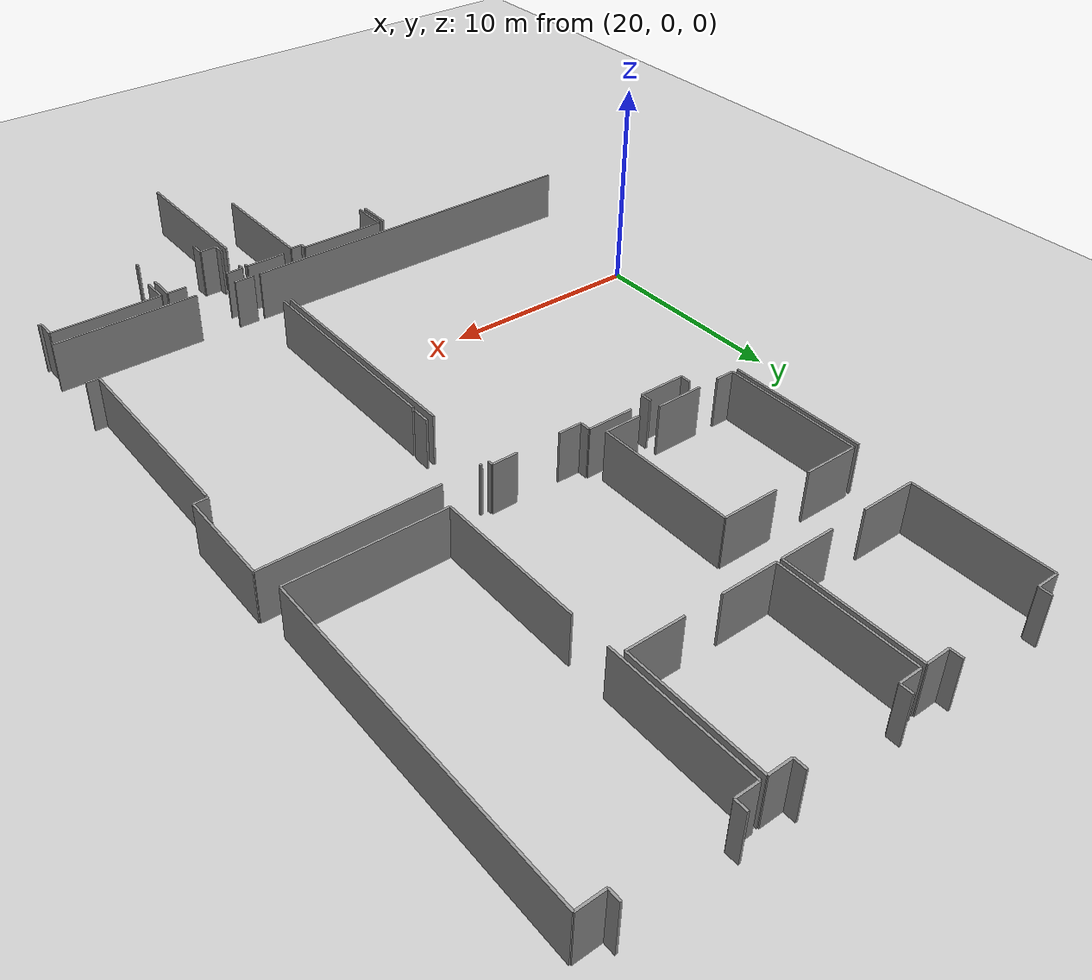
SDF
<sdf version="1.6">
 <world name="default">
  <model name="ground_plane">
   <static>1</static>
   <link name="link">
    <collision name="collision">
     <geometry><plane><normal>0 0 1</normal><size>100 100</size></plane></geometry>
     <surface><friction><ode><mu>100</mu><mu2>50</mu2></ode></friction></surface>
    </collision>
    <visual name="visual">
     <cast_shadows>0</cast_shadows>
     <geometry><plane><normal>0 0 1</normal><size>100 100</size></plane></geometry>
     <material>
      <script><uri>file://media/materials/scripts/gazebo.material</uri><name>Gazebo/Grey</name></script>
     </material>
    </visual>
   </link>
  </model>
  <model name="50045228">
   <static>1</static>
   <link name="Wall_77">
    <collision name="Wall_77_Collision">
     <geometry><box><size>6.33839713298 0.1 2.5</size></box></geometry>
     <pose>3.16919856649 0 1.25 0 0 0</pose>
    </collision>
    <visual name="Wall_77_Visual">
     <pose>3.16919856649 0 1.25 0 0 0</pose>
     <geometry><box><size>6.33839713298 0.1 2.5</size></box></geometry>
     <material>
      <script><uri>file://media/materials/scripts/gazebo.material</uri><name>Gazebo/Grey</name></script>
      <ambient>1 1 1 1</ambient>
     </material>
    </visual>
    <pose>71.329929276 -6.93400145888 0 0 0 1.57079632679</pose>
   </link>
   <link name="Wall_78">
    <collision name="Wall_78_Collision">
     <geometry><box><size>1.09619105008 0.1 2.5</size></box></geometry>
     <pose>0.548095525039 0 1.25 0 0 0</pose>
    </collision>
    <visual name="Wall_78_Visual">
     <pose>0.548095525039 0 1.25 0 0 0</pose>
     <geometry><box><size>1.09619105008 0.1 2.5</size></box></geometry>
     <material>
      <script><uri>file://media/materials/scripts/gazebo.material</uri><name>Gazebo/Grey</name></script>
      <ambient>1 1 1 1</ambient>
     </material>
    </visual>
    <pose>71.329929276 -0.595604325901 0 0 0 0.0</pose>
   </link>
   <link name="Wall_79">
    <collision name="Wall_79_Collision">
     <geometry><box><size>0.562874631315 0.1 2.5</size></box></geometry>
     <pose>0.281437315658 0 1.25 0 0 0</pose>
    </collision>
    <visual name="Wall_79_Visual">
     <pose>0.281437315658 0 1.25 0 0 0</pose>
     <geometry><box><size>0.562874631315 0.1 2.5</size></box></geometry>
     <material>
      <script><uri>file://media/materials/scripts/gazebo.material</uri><name>Gazebo/Grey</name></script>
      <ambient>1 1 1 1</ambient>
     </material>
    </visual>
    <pose>72.426120326 -0.595604325901 0 0 0 1.57079632679</pose>
   </link>
   <link name="Wall_80">
    <collision name="Wall_80_Collision">
     <geometry><box><size>0.574418825917 0.1 2.5</size></box></geometry>
     <pose>0.287209412959 0 1.25 0 0 0</pose>
    </collision>
    <visual name="Wall_80_Visual">
     <pose>0.287209412959 0 1.25 0 0 0</pose>
     <geometry><box><size>0.574418825917 0.1 2.5</size></box></geometry>
     <material>
      <script><uri>file://media/materials/scripts/gazebo.material</uri><name>Gazebo/Grey</name></script>
      <ambient>1 1 1 1</ambient>
     </material>
    </visual>
    <pose>77.315277029 -0.0327296945863 0 0 0 -1.57079632679</pose>
   </link>
   <link name="Wall_81">
    <collision name="Wall_81_Collision">
     <geometry><box><size>1.15695664584 0.1 2.5</size></box></geometry>
     <pose>0.57847832292 0 1.25 0 0 0</pose>
    </collision>
    <visual name="Wall_81_Visual">
     <pose>0.57847832292 0 1.25 0 0 0</pose>
     <geometry><box><size>1.15695664584 0.1 2.5</size></box></geometry>
     <material>
      <script><uri>file://media/materials/scripts/gazebo.material</uri><name>Gazebo/Grey</name></script>
      <ambient>1 1 1 1</ambient>
     </material>
    </visual>
    <pose>77.315277029 -0.607148520504 0 0 0 0.0</pose>
   </link>
   <link name="Wall_82">
    <collision name="Wall_82_Collision">
     <geometry><box><size>6.31949510006 0.1 2.5</size></box></geometry>
     <pose>3.15974755003 0 1.25 0 0 0</pose>
    </collision>
    <visual name="Wall_82_Visual">
     <pose>3.15974755003 0 1.25 0 0 0</pose>
     <geometry><box><size>6.31949510006 0.1 2.5</size></box></geometry>
     <material>
      <script><uri>file://media/materials/scripts/gazebo.material</uri><name>Gazebo/Grey</name></script>
      <ambient>1 1 1 1</ambient>
     </material>
    </visual>
    <pose>78.4722336748 -0.607148520504 0 0 0 -1.57079632679</pose>
   </link>
   <link name="Wall_83">
    <collision name="Wall_83_Collision">
     <geometry><box><size>2.68193206685 0.1 2.5</size></box></geometry>
     <pose>1.34096603343 0 1.25 0 0 0</pose>
    </collision>
    <visual name="Wall_83_Visual">
     <pose>1.34096603343 0 1.25 0 0 0</pose>
     <geometry><box><size>2.68193206685 0.1 2.5</size></box></geometry>
     <material>
      <script><uri>file://media/materials/scripts/gazebo.material</uri><name>Gazebo/Grey</name></script>
      <ambient>1 1 1 1</ambient>
     </material>
    </visual>
    <pose>78.4722336748 -6.92664362056 0 0 0 3.14159265359</pose>
   </link>
   <link name="Wall_84">
    <collision name="Wall_84_Collision">
     <geometry><box><size>2.67483806694 0.1 2.5</size></box></geometry>
     <pose>1.33741903347 0 1.25 0 0 0</pose>
    </collision>
    <visual name="Wall_84_Visual">
     <pose>1.33741903347 0 1.25 0 0 0</pose>
     <geometry><box><size>2.67483806694 0.1 2.5</size></box></geometry>
     <material>
      <script><uri>file://media/materials/scripts/gazebo.material</uri><name>Gazebo/Grey</name></script>
      <ambient>1 1 1 1</ambient>
     </material>
    </visual>
    <pose>74.0047572231 -6.92664362056 0 0 0 -3.13884188984</pose>
   </link>
   <link name="Wall_85">
    <collision name="Wall_85_Collision">
     <geometry><box><size>6.32253972281 0.1 2.5</size></box></geometry>
     <pose>3.16126986141 0 1.25 0 0 0</pose>
    </collision>
    <visual name="Wall_85_Visual">
     <pose>3.16126986141 0 1.25 0 0 0</pose>
     <geometry><box><size>6.32253972281 0.1 2.5</size></box></geometry>
     <material>
      <script><uri>file://media/materials/scripts/gazebo.material</uri><name>Gazebo/Grey</name></script>
      <ambient>1 1 1 1</ambient>
     </material>
    </visual>
    <pose>78.7539881387 -6.92309156069 0 0 0 1.57079632679</pose>
   </link>
   <link name="Wall_86">
    <collision name="Wall_86_Collision">
     <geometry><box><size>1.10101170277 0.1 2.5</size></box></geometry>
     <pose>0.550505851384 0 1.25 0 0 0</pose>
    </collision>
    <visual name="Wall_86_Visual">
     <pose>0.550505851384 0 1.25 0 0 0</pose>
     <geometry><box><size>1.10101170277 0.1 2.5</size></box></geometry>
     <material>
      <script><uri>file://media/materials/scripts/gazebo.material</uri><name>Gazebo/Grey</name></script>
      <ambient>1 1 1 1</ambient>
     </material>
    </visual>
    <pose>78.7539881387 -0.600551837874 0 0 0 0.0</pose>
   </link>
   <link name="Wall_87">
    <collision name="Wall_87_Collision">
     <geometry><box><size>0.567187846881 0.1 2.5</size></box></geometry>
     <pose>0.28359392344 0 1.25 0 0 0</pose>
    </collision>
    <visual name="Wall_87_Visual">
     <pose>0.28359392344 0 1.25 0 0 0</pose>
     <geometry><box><size>0.567187846881 0.1 2.5</size></box></geometry>
     <material>
      <script><uri>file://media/materials/scripts/gazebo.material</uri><name>Gazebo/Grey</name></script>
      <ambient>1 1 1 1</ambient>
     </material>
    </visual>
    <pose>79.8549998414 -0.600551837874 0 0 0 1.57079632679</pose>
   </link>
   <link name="Wall_88">
    <collision name="Wall_88_Collision">
     <geometry><box><size>0.567187846881 0.1 2.5</size></box></geometry>
     <pose>0.28359392344 0 1.25 0 0 0</pose>
    </collision>
    <visual name="Wall_88_Visual">
     <pose>0.28359392344 0 1.25 0 0 0</pose>
     <geometry><box><size>0.567187846881 0.1 2.5</size></box></geometry>
     <material>
      <script><uri>file://media/materials/scripts/gazebo.material</uri><name>Gazebo/Grey</name></script>
      <ambient>1 1 1 1</ambient>
     </material>
    </visual>
    <pose>84.7929973677 -0.033363990993 0 0 0 -1.57079632679</pose>
   </link>
   <link name="Wall_89">
    <collision name="Wall_89_Collision">
     <geometry><box><size>1.11775712791 0.1 2.5</size></box></geometry>
     <pose>0.558878563953 0 1.25 0 0 0</pose>
    </collision>
    <visual name="Wall_89_Visual">
     <pose>0.558878563953 0 1.25 0 0 0</pose>
     <geometry><box><size>1.11775712791 0.1 2.5</size></box></geometry>
     <material>
      <script><uri>file://media/materials/scripts/gazebo.material</uri><name>Gazebo/Grey</name></script>
      <ambient>1 1 1 1</ambient>
     </material>
    </visual>
    <pose>84.7929973677 -0.600551837874 0 0 0 0.0</pose>
   </link>
   <link name="Wall_90">
    <collision name="Wall_90_Collision">
     <geometry><box><size>6.3117566839 0.1 2.5</size></box></geometry>
     <pose>3.15587834195 0 1.25 0 0 0</pose>
    </collision>
    <visual name="Wall_90_Visual">
     <pose>3.15587834195 0 1.25 0 0 0</pose>
     <geometry><box><size>6.3117566839 0.1 2.5</size></box></geometry>
     <material>
      <script><uri>file://media/materials/scripts/gazebo.material</uri><name>Gazebo/Grey</name></script>
      <ambient>1 1 1 1</ambient>
     </material>
    </visual>
    <pose>85.9107544956 -0.600551837874 0 0 0 -1.57079632679</pose>
   </link>
   <link name="Wall_91">
    <collision name="Wall_91_Collision">
     <geometry><box><size>2.69449113571 0.1 2.5</size></box></geometry>
     <pose>1.34724556785 0 1.25 0 0 0</pose>
    </collision>
    <visual name="Wall_91_Visual">
     <pose>1.34724556785 0 1.25 0 0 0</pose>
     <geometry><box><size>2.69449113571 0.1 2.5</size></box></geometry>
     <material>
      <script><uri>file://media/materials/scripts/gazebo.material</uri><name>Gazebo/Grey</name></script>
      <ambient>1 1 1 1</ambient>
     </material>
    </visual>
    <pose>85.9107544956 -6.91230852177 0 0 0 3.14159265359</pose>
   </link>
   <link name="Wall_92">
    <collision name="Wall_92_Collision">
     <geometry><box><size>2.70263164104 0.1 2.5</size></box></geometry>
     <pose>1.35131582052 0 1.25 0 0 0</pose>
    </collision>
    <visual name="Wall_92_Visual">
     <pose>1.35131582052 0 1.25 0 0 0</pose>
     <geometry><box><size>2.70263164104 0.1 2.5</size></box></geometry>
     <material>
      <script><uri>file://media/materials/scripts/gazebo.material</uri><name>Gazebo/Grey</name></script>
      <ambient>1 1 1 1</ambient>
     </material>
    </visual>
    <pose>81.4565982684 -6.91230852177 0 0 0 -3.1376028137</pose>
   </link>
   <link name="Wall_93">
    <collision name="Wall_93_Collision">
     <geometry><box><size>7.06327106657 0.1 2.5</size></box></geometry>
     <pose>3.53163553328 0 1.25 0 0 0</pose>
    </collision>
    <visual name="Wall_93_Visual">
     <pose>3.53163553328 0 1.25 0 0 0</pose>
     <geometry><box><size>7.06327106657 0.1 2.5</size></box></geometry>
     <material>
      <script><uri>file://media/materials/scripts/gazebo.material</uri><name>Gazebo/Grey</name></script>
      <ambient>1 1 1 1</ambient>
     </material>
    </visual>
    <pose>86.2161047858 -16.3215882782 0 0 0 1.57079632679</pose>
   </link>
   <link name="Wall_94">
    <collision name="Wall_94_Collision">
     <geometry><box><size>6.81475373442 0.1 2.5</size></box></geometry>
     <pose>3.40737686721 0 1.25 0 0 0</pose>
    </collision>
    <visual name="Wall_94_Visual">
     <pose>3.40737686721 0 1.25 0 0 0</pose>
     <geometry><box><size>6.81475373442 0.1 2.5</size></box></geometry>
     <material>
      <script><uri>file://media/materials/scripts/gazebo.material</uri><name>Gazebo/Grey</name></script>
      <ambient>1 1 1 1</ambient>
     </material>
    </visual>
    <pose>86.2161047858 -7.41530557229 0 0 0 1.57079632679</pose>
   </link>
   <link name="Wall_95">
    <collision name="Wall_95_Collision">
     <geometry><box><size>1.0851542926 0.1 2.5</size></box></geometry>
     <pose>0.5425771463 0 1.25 0 0 0</pose>
    </collision>
    <visual name="Wall_95_Visual">
     <pose>0.5425771463 0 1.25 0 0 0</pose>
     <geometry><box><size>1.0851542926 0.1 2.5</size></box></geometry>
     <material>
      <script><uri>file://media/materials/scripts/gazebo.material</uri><name>Gazebo/Grey</name></script>
      <ambient>1 1 1 1</ambient>
     </material>
    </visual>
    <pose>86.2161047858 -0.600551837874 0 0 0 0.0</pose>
   </link>
   <link name="Wall_96">
    <collision name="Wall_96_Collision">
     <geometry><box><size>0.571627921728 0.1 2.5</size></box></geometry>
     <pose>0.285813960864 0 1.25 0 0 0</pose>
    </collision>
    <visual name="Wall_96_Visual">
     <pose>0.285813960864 0 1.25 0 0 0</pose>
     <geometry><box><size>0.571627921728 0.1 2.5</size></box></geometry>
     <material>
      <script><uri>file://media/materials/scripts/gazebo.material</uri><name>Gazebo/Grey</name></script>
      <ambient>1 1 1 1</ambient>
     </material>
    </visual>
    <pose>87.3012590784 -0.600551837874 0 0 0 1.57079632679</pose>
   </link>
   <link name="Wall_97">
    <collision name="Wall_97_Collision">
     <geometry><box><size>0.543972598395 0.1 2.5</size></box></geometry>
     <pose>0.271986299198 0 1.25 0 0 0</pose>
    </collision>
    <visual name="Wall_97_Visual">
     <pose>0.271986299198 0 1.25 0 0 0</pose>
     <geometry><box><size>0.543972598395 0.1 2.5</size></box></geometry>
     <material>
      <script><uri>file://media/materials/scripts/gazebo.material</uri><name>Gazebo/Grey</name></script>
      <ambient>1 1 1 1</ambient>
     </material>
    </visual>
    <pose>92.2119818591 -0.028923916146 0 0 0 -1.57079632679</pose>
   </link>
   <link name="Wall_98">
    <collision name="Wall_98_Collision">
     <geometry><box><size>1.23307221465 0.1 2.5</size></box></geometry>
     <pose>0.616536107323 0 1.25 0 0 0</pose>
    </collision>
    <visual name="Wall_98_Visual">
     <pose>0.616536107323 0 1.25 0 0 0</pose>
     <geometry><box><size>1.23307221465 0.1 2.5</size></box></geometry>
     <material>
      <script><uri>file://media/materials/scripts/gazebo.material</uri><name>Gazebo/Grey</name></script>
      <ambient>1 1 1 1</ambient>
     </material>
    </visual>
    <pose>92.2119818591 -0.572896514541 0 0 0 0.0</pose>
   </link>
   <link name="Wall_99">
    <collision name="Wall_99_Collision">
     <geometry><box><size>15.797532587 0.1 2.5</size></box></geometry>
     <pose>7.89876629349 0 1.25 0 0 0</pose>
    </collision>
    <visual name="Wall_99_Visual">
     <pose>7.89876629349 0 1.25 0 0 0</pose>
     <geometry><box><size>15.797532587 0.1 2.5</size></box></geometry>
     <material>
      <script><uri>file://media/materials/scripts/gazebo.material</uri><name>Gazebo/Grey</name></script>
      <ambient>1 1 1 1</ambient>
     </material>
    </visual>
    <pose>93.4450540738 -0.572896514541 0 0 0 -1.57079632679</pose>
   </link>
   <link name="Wall_100">
    <collision name="Wall_100_Collision">
     <geometry><box><size>7.22911427732 0.1 2.5</size></box></geometry>
     <pose>3.61455713866 0 1.25 0 0 0</pose>
    </collision>
    <visual name="Wall_100_Visual">
     <pose>3.61455713866 0 1.25 0 0 0</pose>
     <geometry><box><size>7.22911427732 0.1 2.5</size></box></geometry>
     <material>
      <script><uri>file://media/materials/scripts/gazebo.material</uri><name>Gazebo/Grey</name></script>
      <ambient>1 1 1 1</ambient>
     </material>
    </visual>
    <pose>93.4450540738 -16.3704291015 0 0 0 3.13483647392</pose>
   </link>
   <link name="Wall_101">
    <collision name="Wall_101_Collision">
     <geometry><box><size>6.64146395611 0.1 2.5</size></box></geometry>
     <pose>3.32073197805 0 1.25 0 0 0</pose>
    </collision>
    <visual name="Wall_101_Visual">
     <pose>3.32073197805 0 1.25 0 0 0</pose>
     <geometry><box><size>6.64146395611 0.1 2.5</size></box></geometry>
     <material>
      <script><uri>file://media/materials/scripts/gazebo.material</uri><name>Gazebo/Grey</name></script>
      <ambient>1 1 1 1</ambient>
     </material>
    </visual>
    <pose>71.3456598268 -16.3534299578 0 0 0 1.57079632679</pose>
   </link>
   <link name="Wall_102">
    <collision name="Wall_102_Collision">
     <geometry><box><size>2.63892677048 0.1 2.5</size></box></geometry>
     <pose>1.31946338524 0 1.25 0 0 0</pose>
    </collision>
    <visual name="Wall_102_Visual">
     <pose>1.31946338524 0 1.25 0 0 0</pose>
     <geometry><box><size>2.63892677048 0.1 2.5</size></box></geometry>
     <material>
      <script><uri>file://media/materials/scripts/gazebo.material</uri><name>Gazebo/Grey</name></script>
      <ambient>1 1 1 1</ambient>
     </material>
    </visual>
    <pose>71.3456598268 -9.71196600171 0 0 0 0.0</pose>
   </link>
   <link name="Wall_103">
    <collision name="Wall_103_Collision">
     <geometry><box><size>2.7054010339 0.1 2.5</size></box></geometry>
     <pose>1.35270051695 0 1.25 0 0 0</pose>
    </collision>
    <visual name="Wall_103_Visual">
     <pose>1.35270051695 0 1.25 0 0 0</pose>
     <geometry><box><size>2.7054010339 0.1 2.5</size></box></geometry>
     <material>
      <script><uri>file://media/materials/scripts/gazebo.material</uri><name>Gazebo/Grey</name></script>
      <ambient>1 1 1 1</ambient>
     </material>
    </visual>
    <pose>75.7762202277 -9.71196600171 0 0 0 0.0</pose>
   </link>
   <link name="Wall_104">
    <collision name="Wall_104_Collision">
     <geometry><box><size>6.64641146808 0.1 2.5</size></box></geometry>
     <pose>3.32320573404 0 1.25 0 0 0</pose>
    </collision>
    <visual name="Wall_104_Visual">
     <pose>3.32320573404 0 1.25 0 0 0</pose>
     <geometry><box><size>6.64641146808 0.1 2.5</size></box></geometry>
     <material>
      <script><uri>file://media/materials/scripts/gazebo.material</uri><name>Gazebo/Grey</name></script>
      <ambient>1 1 1 1</ambient>
     </material>
    </visual>
    <pose>78.4816212616 -9.71196600171 0 0 0 -1.57079632679</pose>
   </link>
   <link name="Wall_105">
    <collision name="Wall_105_Collision">
     <geometry><box><size>1.78529066633 0.1 2.5</size></box></geometry>
     <pose>0.892645333164 0 1.25 0 0 0</pose>
    </collision>
    <visual name="Wall_105_Visual">
     <pose>0.892645333164 0 1.25 0 0 0</pose>
     <geometry><box><size>1.78529066633 0.1 2.5</size></box></geometry>
     <material>
      <script><uri>file://media/materials/scripts/gazebo.material</uri><name>Gazebo/Grey</name></script>
      <ambient>1 1 1 1</ambient>
     </material>
    </visual>
    <pose>78.4816212616 -16.3583774698 0 0 0 3.14159265359</pose>
   </link>
   <link name="Wall_106">
    <collision name="Wall_106_Collision">
     <geometry><box><size>2.31048809108 0.1 2.5</size></box></geometry>
     <pose>1.15524404554 0 1.25 0 0 0</pose>
    </collision>
    <visual name="Wall_106_Visual">
     <pose>1.15524404554 0 1.25 0 0 0</pose>
     <geometry><box><size>2.31048809108 0.1 2.5</size></box></geometry>
     <material>
      <script><uri>file://media/materials/scripts/gazebo.material</uri><name>Gazebo/Grey</name></script>
      <ambient>1 1 1 1</ambient>
     </material>
    </visual>
    <pose>75.6010275602 -16.3583774698 0 0 0 3.14159265359</pose>
   </link>
   <link name="Wall_107">
    <collision name="Wall_107_Collision">
     <geometry><box><size>0.918855094627 0.1 2.5</size></box></geometry>
     <pose>0.459427547313 0 1.25 0 0 0</pose>
    </collision>
    <visual name="Wall_107_Visual">
     <pose>0.459427547313 0 1.25 0 0 0</pose>
     <geometry><box><size>0.918855094627 0.1 2.5</size></box></geometry>
     <material>
      <script><uri>file://media/materials/scripts/gazebo.material</uri><name>Gazebo/Grey</name></script>
      <ambient>1 1 1 1</ambient>
     </material>
    </visual>
    <pose>72.2645016016 -16.3583774698 0 0 0 3.13620819645</pose>
   </link>
   <link name="Wall_111">
    <collision name="Wall_111_Collision">
     <geometry><box><size>6.63562842916 0.1 2.5</size></box></geometry>
     <pose>3.31781421458 0 1.25 0 0 0</pose>
    </collision>
    <visual name="Wall_111_Visual">
     <pose>3.31781421458 0 1.25 0 0 0</pose>
     <geometry><box><size>6.63562842916 0.1 2.5</size></box></geometry>
     <material>
      <script><uri>file://media/materials/scripts/gazebo.material</uri><name>Gazebo/Grey</name></script>
      <ambient>1 1 1 1</ambient>
     </material>
    </visual>
    <pose>71.0512194348 -9.70473502268 0 0 0 -1.57079632679</pose>
   </link>
   <link name="Wall_183">
    <collision name="Wall_183_Collision">
     <geometry><box><size>0.518473882845 0.1 2.5</size></box></geometry>
     <pose>0.259236941423 0 1.25 0 0 0</pose>
    </collision>
    <visual name="Wall_183_Visual">
     <pose>0.259236941423 0 1.25 0 0 0</pose>
     <geometry><box><size>0.518473882845 0.1 2.5</size></box></geometry>
     <material>
      <script><uri>file://media/materials/scripts/gazebo.material</uri><name>Gazebo/Grey</name></script>
      <ambient>1 1 1 1</ambient>
     </material>
    </visual>
    <pose>73.342805493 -16.8878881101 0 0 0 -1.57079632679</pose>
   </link>
   <link name="Wall_184">
    <collision name="Wall_184_Collision">
     <geometry><box><size>2.26152040849 0.1 2.5</size></box></geometry>
     <pose>1.13076020424 0 1.25 0 0 0</pose>
    </collision>
    <visual name="Wall_184_Visual">
     <pose>1.13076020424 0 1.25 0 0 0</pose>
     <geometry><box><size>2.26152040849 0.1 2.5</size></box></geometry>
     <material>
      <script><uri>file://media/materials/scripts/gazebo.material</uri><name>Gazebo/Grey</name></script>
      <ambient>1 1 1 1</ambient>
     </material>
    </visual>
    <pose>73.342805493 -17.406361993 0 0 0 0.0</pose>
   </link>
   <link name="Wall_185">
    <collision name="Wall_185_Collision">
     <geometry><box><size>0.518473882845 0.1 2.5</size></box></geometry>
     <pose>0.259236941423 0 1.25 0 0 0</pose>
    </collision>
    <visual name="Wall_185_Visual">
     <pose>0.259236941423 0 1.25 0 0 0</pose>
     <geometry><box><size>0.518473882845 0.1 2.5</size></box></geometry>
     <material>
      <script><uri>file://media/materials/scripts/gazebo.material</uri><name>Gazebo/Grey</name></script>
      <ambient>1 1 1 1</ambient>
     </material>
    </visual>
    <pose>75.6043259015 -17.406361993 0 0 0 1.57079632679</pose>
   </link>
   <link name="Wall_186">
    <collision name="Wall_186_Collision">
     <geometry><box><size>2.26139354921 0.1 2.5</size></box></geometry>
     <pose>1.1306967746 0 1.25 0 0 0</pose>
    </collision>
    <visual name="Wall_186_Visual">
     <pose>1.1306967746 0 1.25 0 0 0</pose>
     <geometry><box><size>2.26139354921 0.1 2.5</size></box></geometry>
     <material>
      <script><uri>file://media/materials/scripts/gazebo.material</uri><name>Gazebo/Grey</name></script>
      <ambient>1 1 1 1</ambient>
     </material>
    </visual>
    <pose>76.6632203229 -16.8878881101 0 0 0 0.0</pose>
   </link>
   <link name="Wall_187">
    <collision name="Wall_187_Collision">
     <geometry><box><size>0.518473882845 0.1 2.5</size></box></geometry>
     <pose>0.259236941423 0 1.25 0 0 0</pose>
    </collision>
    <visual name="Wall_187_Visual">
     <pose>0.259236941423 0 1.25 0 0 0</pose>
     <geometry><box><size>0.518473882845 0.1 2.5</size></box></geometry>
     <material>
      <script><uri>file://media/materials/scripts/gazebo.material</uri><name>Gazebo/Grey</name></script>
      <ambient>1 1 1 1</ambient>
     </material>
    </visual>
    <pose>78.9246138721 -16.8878881101 0 0 0 -1.57079632679</pose>
   </link>
   <link name="Wall_188">
    <collision name="Wall_188_Collision">
     <geometry><box><size>1.13627858298 0.1 2.5</size></box></geometry>
     <pose>0.568139291491 0 1.25 0 0 0</pose>
    </collision>
    <visual name="Wall_188_Visual">
     <pose>0.568139291491 0 1.25 0 0 0</pose>
     <geometry><box><size>1.13627858298 0.1 2.5</size></box></geometry>
     <material>
      <script><uri>file://media/materials/scripts/gazebo.material</uri><name>Gazebo/Grey</name></script>
      <ambient>1 1 1 1</ambient>
     </material>
    </visual>
    <pose>78.9246138721 -17.406361993 0 0 0 0.0</pose>
   </link>
   <link name="Wall_189">
    <collision name="Wall_189_Collision">
     <geometry><box><size>1.23548254099 0.1 2.5</size></box></geometry>
     <pose>0.617741270496 0 1.25 0 0 0</pose>
    </collision>
    <visual name="Wall_189_Visual">
     <pose>0.617741270496 0 1.25 0 0 0</pose>
     <geometry><box><size>1.23548254099 0.1 2.5</size></box></geometry>
     <material>
      <script><uri>file://media/materials/scripts/gazebo.material</uri><name>Gazebo/Grey</name></script>
      <ambient>1 1 1 1</ambient>
     </material>
    </visual>
    <pose>82.1899717738 -17.406361993 0 0 0 0.0</pose>
   </link>
   <link name="Wall_190">
    <collision name="Wall_190_Collision">
     <geometry><box><size>0.242681805208 0.1 2.5</size></box></geometry>
     <pose>0.121340902604 0 1.25 0 0 0</pose>
    </collision>
    <visual name="Wall_190_Visual">
     <pose>0.121340902604 0 1.25 0 0 0</pose>
     <geometry><box><size>0.242681805208 0.1 2.5</size></box></geometry>
     <material>
      <script><uri>file://media/materials/scripts/gazebo.material</uri><name>Gazebo/Grey</name></script>
      <ambient>1 1 1 1</ambient>
     </material>
    </visual>
    <pose>83.4254543148 -17.406361993 0 0 0 -1.57079632679</pose>
   </link>
   <link name="Wall_191">
    <collision name="Wall_191_Collision">
     <geometry><box><size>11.5155244046 0.1 2.5</size></box></geometry>
     <pose>5.75776220228 0 1.25 0 0 0</pose>
    </collision>
    <visual name="Wall_191_Visual">
     <pose>5.75776220228 0 1.25 0 0 0</pose>
     <geometry><box><size>11.5155244046 0.1 2.5</size></box></geometry>
     <material>
      <script><uri>file://media/materials/scripts/gazebo.material</uri><name>Gazebo/Grey</name></script>
      <ambient>1 1 1 1</ambient>
     </material>
    </visual>
    <pose>83.4254543148 -21.3643715708 0 0 0 -1.57079632679</pose>
   </link>
   <link name="Wall_192">
    <collision name="Wall_192_Collision">
     <geometry><box><size>17.7751419238 0.1 2.5</size></box></geometry>
     <pose>8.88757096191 0 1.25 0 0 0</pose>
    </collision>
    <visual name="Wall_192_Visual">
     <pose>8.88757096191 0 1.25 0 0 0</pose>
     <geometry><box><size>17.7751419238 0.1 2.5</size></box></geometry>
     <material>
      <script><uri>file://media/materials/scripts/gazebo.material</uri><name>Gazebo/Grey</name></script>
      <ambient>1 1 1 1</ambient>
     </material>
    </visual>
    <pose>83.4254543148 -35.8174494941 0 0 0 3.14159265359</pose>
   </link>
   <link name="Wall_196">
    <collision name="Wall_196_Collision">
     <geometry><box><size>0.860740223907 0.1 2.5</size></box></geometry>
     <pose>0.430370111953 0 1.25 0 0 0</pose>
    </collision>
    <visual name="Wall_196_Visual">
     <pose>0.430370111953 0 1.25 0 0 0</pose>
     <geometry><box><size>0.860740223907 0.1 2.5</size></box></geometry>
     <material>
      <script><uri>file://media/materials/scripts/gazebo.material</uri><name>Gazebo/Grey</name></script>
      <ambient>1 1 1 1</ambient>
     </material>
    </visual>
    <pose>83.7988011798 -22.1680251181 0 0 0 1.57079632679</pose>
   </link>
   <link name="Wall_197">
    <collision name="Wall_197_Collision">
     <geometry><box><size>0.126859281342 0.1 2.5</size></box></geometry>
     <pose>0.0634296406711 0 1.25 0 0 0</pose>
    </collision>
    <visual name="Wall_197_Visual">
     <pose>0.0634296406711 0 1.25 0 0 0</pose>
     <geometry><box><size>0.126859281342 0.1 2.5</size></box></geometry>
     <material>
      <script><uri>file://media/materials/scripts/gazebo.material</uri><name>Gazebo/Grey</name></script>
      <ambient>1 1 1 1</ambient>
     </material>
    </visual>
    <pose>83.7988011798 -17.7108242682 0 0 0 1.57079632679</pose>
   </link>
   <link name="Wall_198">
    <collision name="Wall_198_Collision">
     <geometry><box><size>8.12749357775 0.1 2.5</size></box></geometry>
     <pose>4.06374678887 0 1.25 0 0 0</pose>
    </collision>
    <visual name="Wall_198_Visual">
     <pose>4.06374678887 0 1.25 0 0 0</pose>
     <geometry><box><size>8.12749357775 0.1 2.5</size></box></geometry>
     <material>
      <script><uri>file://media/materials/scripts/gazebo.material</uri><name>Gazebo/Grey</name></script>
      <ambient>1 1 1 1</ambient>
     </material>
    </visual>
    <pose>85.6792363071 -17.5839649868 0 0 0 0.0</pose>
   </link>
   <link name="Wall_199">
    <collision name="Wall_199_Collision">
     <geometry><box><size>4.62364022708 0.1 2.5</size></box></geometry>
     <pose>2.31182011354 0 1.25 0 0 0</pose>
    </collision>
    <visual name="Wall_199_Visual">
     <pose>2.31182011354 0 1.25 0 0 0</pose>
     <geometry><box><size>4.62364022708 0.1 2.5</size></box></geometry>
     <material>
      <script><uri>file://media/materials/scripts/gazebo.material</uri><name>Gazebo/Grey</name></script>
      <ambient>1 1 1 1</ambient>
     </material>
    </visual>
    <pose>93.8067298849 -17.5839649868 0 0 0 -1.57079632679</pose>
   </link>
   <link name="Wall_200">
    <collision name="Wall_200_Collision">
     <geometry><box><size>0.641907963591 0.1 2.5</size></box></geometry>
     <pose>0.320953981796 0 1.25 0 0 0</pose>
    </collision>
    <visual name="Wall_200_Visual">
     <pose>0.320953981796 0 1.25 0 0 0</pose>
     <geometry><box><size>0.641907963591 0.1 2.5</size></box></geometry>
     <material>
      <script><uri>file://media/materials/scripts/gazebo.material</uri><name>Gazebo/Grey</name></script>
      <ambient>1 1 1 1</ambient>
     </material>
    </visual>
    <pose>93.8067298849 -22.2076052139 0 0 0 3.14159265359</pose>
   </link>
   <link name="Wall_201">
    <collision name="Wall_201_Collision">
     <geometry><box><size>10.5828549681 0.1 2.5</size></box></geometry>
     <pose>5.29142748406 0 1.25 0 0 0</pose>
    </collision>
    <visual name="Wall_201_Visual">
     <pose>5.29142748406 0 1.25 0 0 0</pose>
     <geometry><box><size>10.5828549681 0.1 2.5</size></box></geometry>
     <material>
      <script><uri>file://media/materials/scripts/gazebo.material</uri><name>Gazebo/Grey</name></script>
      <ambient>1 1 1 1</ambient>
     </material>
    </visual>
    <pose>83.7550347277 -32.9494148616 0 0 0 1.57079632679</pose>
   </link>
   <link name="Wall_202">
    <collision name="Wall_202_Collision">
     <geometry><box><size>9.75903079509 0.1 2.5</size></box></geometry>
     <pose>4.87951539755 0 1.25 0 0 0</pose>
    </collision>
    <visual name="Wall_202_Visual">
     <pose>4.87951539755 0 1.25 0 0 0</pose>
     <geometry><box><size>9.75903079509 0.1 2.5</size></box></geometry>
     <material>
      <script><uri>file://media/materials/scripts/gazebo.material</uri><name>Gazebo/Grey</name></script>
      <ambient>1 1 1 1</ambient>
     </material>
    </visual>
    <pose>93.190828074 -22.3665598934 0 0 0 -1.57079632679</pose>
   </link>
   <link name="Wall_203">
    <collision name="Wall_203_Collision">
     <geometry><box><size>0.608543972598 0.1 2.5</size></box></geometry>
     <pose>0.304271986299 0 1.25 0 0 0</pose>
    </collision>
    <visual name="Wall_203_Visual">
     <pose>0.304271986299 0 1.25 0 0 0</pose>
     <geometry><box><size>0.608543972598 0.1 2.5</size></box></geometry>
     <material>
      <script><uri>file://media/materials/scripts/gazebo.material</uri><name>Gazebo/Grey</name></script>
      <ambient>1 1 1 1</ambient>
     </material>
    </visual>
    <pose>93.190828074 -32.1255906885 0 0 0 0.0</pose>
   </link>
   <link name="Wall_204">
    <collision name="Wall_204_Collision">
     <geometry><box><size>7.05350290191 0.1 2.5</size></box></geometry>
     <pose>3.52675145095 0 1.25 0 0 0</pose>
    </collision>
    <visual name="Wall_204_Visual">
     <pose>3.52675145095 0 1.25 0 0 0</pose>
     <geometry><box><size>7.05350290191 0.1 2.5</size></box></geometry>
     <material>
      <script><uri>file://media/materials/scripts/gazebo.material</uri><name>Gazebo/Grey</name></script>
      <ambient>1 1 1 1</ambient>
     </material>
    </visual>
    <pose>93.7993720466 -35.8165614792 0 0 0 3.14159265359</pose>
   </link>
   <link name="Wall_205">
    <collision name="Wall_205_Collision">
     <geometry><box><size>0.999672902443 0.1 2.5</size></box></geometry>
     <pose>0.499836451222 0 1.25 0 0 0</pose>
    </collision>
    <visual name="Wall_205_Visual">
     <pose>0.499836451222 0 1.25 0 0 0</pose>
     <geometry><box><size>0.999672902443 0.1 2.5</size></box></geometry>
     <material>
      <script><uri>file://media/materials/scripts/gazebo.material</uri><name>Gazebo/Grey</name></script>
      <ambient>1 1 1 1</ambient>
     </material>
    </visual>
    <pose>84.7546858647 -35.8165614792 0 0 0 -3.1349937646</pose>
   </link>
   <link name="Wall_206">
    <collision name="Wall_206_Collision">
     <geometry><box><size>0.728045415623 0.1 2.5</size></box></geometry>
     <pose>0.364022707811 0 1.25 0 0 0</pose>
    </collision>
    <visual name="Wall_206_Visual">
     <pose>0.364022707811 0 1.25 0 0 0</pose>
     <geometry><box><size>0.728045415623 0.1 2.5</size></box></geometry>
     <material>
      <script><uri>file://media/materials/scripts/gazebo.material</uri><name>Gazebo/Grey</name></script>
      <ambient>1 1 1 1</ambient>
     </material>
    </visual>
    <pose>84.6940471282 -40.1748120897 0 0 0 1.57079632679</pose>
   </link>
   <link name="Wall_207">
    <collision name="Wall_207_Collision">
     <geometry><box><size>0.860486505344 0.1 2.5</size></box></geometry>
     <pose>0.430243252672 0 1.25 0 0 0</pose>
    </collision>
    <visual name="Wall_207_Visual">
     <pose>0.430243252672 0 1.25 0 0 0</pose>
     <geometry><box><size>0.860486505344 0.1 2.5</size></box></geometry>
     <material>
      <script><uri>file://media/materials/scripts/gazebo.material</uri><name>Gazebo/Grey</name></script>
      <ambient>1 1 1 1</ambient>
     </material>
    </visual>
    <pose>84.6940471282 -39.4467666741 0 0 0 3.14159265359</pose>
   </link>
   <link name="Wall_208">
    <collision name="Wall_208_Collision">
     <geometry><box><size>0.540547397799 0.1 2.5</size></box></geometry>
     <pose>0.2702736989 0 1.25 0 0 0</pose>
    </collision>
    <visual name="Wall_208_Visual">
     <pose>0.2702736989 0 1.25 0 0 0</pose>
     <geometry><box><size>0.540547397799 0.1 2.5</size></box></geometry>
     <material>
      <script><uri>file://media/materials/scripts/gazebo.material</uri><name>Gazebo/Grey</name></script>
      <ambient>1 1 1 1</ambient>
     </material>
    </visual>
    <pose>83.8335606229 -39.4467666741 0 0 0 1.57079632679</pose>
   </link>
   <link name="Wall_209">
    <collision name="Wall_209_Collision">
     <geometry><box><size>0.316894484793 0.1 2.5</size></box></geometry>
     <pose>0.158447242396 0 1.25 0 0 0</pose>
    </collision>
    <visual name="Wall_209_Visual">
     <pose>0.158447242396 0 1.25 0 0 0</pose>
     <geometry><box><size>0.316894484793 0.1 2.5</size></box></geometry>
     <material>
      <script><uri>file://media/materials/scripts/gazebo.material</uri><name>Gazebo/Grey</name></script>
      <ambient>1 1 1 1</ambient>
     </material>
    </visual>
    <pose>83.8335606229 -37.1098918525 0 0 0 1.57079632679</pose>
   </link>
   <link name="Wall_210">
    <collision name="Wall_210_Collision">
     <geometry><box><size>0.834353493387 0.1 2.5</size></box></geometry>
     <pose>0.417176746694 0 1.25 0 0 0</pose>
    </collision>
    <visual name="Wall_210_Visual">
     <pose>0.417176746694 0 1.25 0 0 0</pose>
     <geometry><box><size>0.834353493387 0.1 2.5</size></box></geometry>
     <material>
      <script><uri>file://media/materials/scripts/gazebo.material</uri><name>Gazebo/Grey</name></script>
      <ambient>1 1 1 1</ambient>
     </material>
    </visual>
    <pose>83.8335606229 -36.7929973677 0 0 0 0.0</pose>
   </link>
   <link name="Wall_211">
    <collision name="Wall_211_Collision">
     <geometry><box><size>0.938758681932 0.1 2.5</size></box></geometry>
     <pose>0.469379340966 0 1.25 0 0 0</pose>
    </collision>
    <visual name="Wall_211_Visual">
     <pose>0.469379340966 0 1.25 0 0 0</pose>
     <geometry><box><size>0.938758681932 0.1 2.5</size></box></geometry>
     <material>
      <script><uri>file://media/materials/scripts/gazebo.material</uri><name>Gazebo/Grey</name></script>
      <ambient>1 1 1 1</ambient>
     </material>
    </visual>
    <pose>86.8098062224 -36.7929973677 0 0 0 0.0</pose>
   </link>
   <link name="Wall_212">
    <collision name="Wall_212_Collision">
     <geometry><box><size>1.35485712473 0.1 2.5</size></box></geometry>
     <pose>0.677428562367 0 1.25 0 0 0</pose>
    </collision>
    <visual name="Wall_212_Visual">
     <pose>0.677428562367 0 1.25 0 0 0</pose>
     <geometry><box><size>1.35485712473 0.1 2.5</size></box></geometry>
     <material>
      <script><uri>file://media/materials/scripts/gazebo.material</uri><name>Gazebo/Grey</name></script>
      <ambient>1 1 1 1</ambient>
     </material>
    </visual>
    <pose>87.7485649044 -36.7929973677 0 0 0 -1.57079632679</pose>
   </link>
   <link name="Wall_213">
    <collision name="Wall_213_Collision">
     <geometry><box><size>0.225175224382 0.1 2.5</size></box></geometry>
     <pose>0.112587612191 0 1.25 0 0 0</pose>
    </collision>
    <visual name="Wall_213_Visual">
     <pose>0.112587612191 0 1.25 0 0 0</pose>
     <geometry><box><size>0.225175224382 0.1 2.5</size></box></geometry>
     <material>
      <script><uri>file://media/materials/scripts/gazebo.material</uri><name>Gazebo/Grey</name></script>
      <ambient>1 1 1 1</ambient>
     </material>
    </visual>
    <pose>87.7485649044 -39.9627033713 0 0 0 -1.57079632679</pose>
   </link>
   <link name="Wall_217">
    <collision name="Wall_217_Collision">
     <geometry><box><size>1.99638451048 0.1 2.5</size></box></geometry>
     <pose>0.998192255241 0 1.25 0 0 0</pose>
    </collision>
    <visual name="Wall_217_Visual">
     <pose>0.998192255241 0 1.25 0 0 0</pose>
     <geometry><box><size>1.99638451048 0.1 2.5</size></box></geometry>
     <material>
      <script><uri>file://media/materials/scripts/gazebo.material</uri><name>Gazebo/Grey</name></script>
      <ambient>1 1 1 1</ambient>
     </material>
    </visual>
    <pose>81.5353778821 -36.8231898766 0 0 0 0.0</pose>
   </link>
   <link name="Wall_218">
    <collision name="Wall_218_Collision">
     <geometry><box><size>0.19561701183 0.1 2.5</size></box></geometry>
     <pose>0.0978085059148 0 1.25 0 0 0</pose>
    </collision>
    <visual name="Wall_218_Visual">
     <pose>0.0978085059148 0 1.25 0 0 0</pose>
     <geometry><box><size>0.19561701183 0.1 2.5</size></box></geometry>
     <material>
      <script><uri>file://media/materials/scripts/gazebo.material</uri><name>Gazebo/Grey</name></script>
      <ambient>1 1 1 1</ambient>
     </material>
    </visual>
    <pose>83.5317623926 -36.8231898766 0 0 0 -1.57079632679</pose>
   </link>
   <link name="Wall_219">
    <collision name="Wall_219_Collision">
     <geometry><box><size>7.71088769782 0.1 2.5</size></box></geometry>
     <pose>3.85544384891 0 1.25 0 0 0</pose>
    </collision>
    <visual name="Wall_219_Visual">
     <pose>3.85544384891 0 1.25 0 0 0</pose>
     <geometry><box><size>7.71088769782 0.1 2.5</size></box></geometry>
     <material>
      <script><uri>file://media/materials/scripts/gazebo.material</uri><name>Gazebo/Grey</name></script>
      <ambient>1 1 1 1</ambient>
     </material>
    </visual>
    <pose>83.5317623926 -38.9614030637 0 0 0 -1.57079632679</pose>
   </link>
   <link name="Wall_222">
    <collision name="Wall_222_Collision">
     <geometry><box><size>1.334686499 0.1 2.5</size></box></geometry>
     <pose>0.6673432495 0 1.25 0 0 0</pose>
    </collision>
    <visual name="Wall_222_Visual">
     <pose>0.6673432495 0 1.25 0 0 0</pose>
     <geometry><box><size>1.334686499 0.1 2.5</size></box></geometry>
     <material>
      <script><uri>file://media/materials/scripts/gazebo.material</uri><name>Gazebo/Grey</name></script>
      <ambient>1 1 1 1</ambient>
     </material>
    </visual>
    <pose>88.0920998383 -38.1119533158 0 0 0 1.57079632679</pose>
   </link>
   <link name="Wall_223">
    <collision name="Wall_223_Collision">
     <geometry><box><size>5.40483968158 0.1 2.5</size></box></geometry>
     <pose>2.70241984079 0 1.25 0 0 0</pose>
    </collision>
    <visual name="Wall_223_Visual">
     <pose>2.70241984079 0 1.25 0 0 0</pose>
     <geometry><box><size>5.40483968158 0.1 2.5</size></box></geometry>
     <material>
      <script><uri>file://media/materials/scripts/gazebo.material</uri><name>Gazebo/Grey</name></script>
      <ambient>1 1 1 1</ambient>
     </material>
    </visual>
    <pose>88.0920998383 -36.7772668168 0 0 0 0.0</pose>
   </link>
   <link name="Wall_224">
    <collision name="Wall_224_Collision">
     <geometry><box><size>0.915543433446 0.1 2.5</size></box></geometry>
     <pose>0.457771716723 0 1.25 0 0 0</pose>
    </collision>
    <visual name="Wall_224_Visual">
     <pose>0.457771716723 0 1.25 0 0 0</pose>
     <geometry><box><size>0.915543433446 0.1 2.5</size></box></geometry>
     <material>
      <script><uri>file://media/materials/scripts/gazebo.material</uri><name>Gazebo/Grey</name></script>
      <ambient>1 1 1 1</ambient>
     </material>
    </visual>
    <pose>93.4969395198 -36.7772668168 0 0 0 -1.57079632679</pose>
   </link>
   <link name="Wall_225">
    <collision name="Wall_225_Collision">
     <geometry><box><size>0.176461260347 0.1 2.5</size></box></geometry>
     <pose>0.0882306301735 0 1.25 0 0 0</pose>
    </collision>
    <visual name="Wall_225_Visual">
     <pose>0.0882306301735 0 1.25 0 0 0</pose>
     <geometry><box><size>0.176461260347 0.1 2.5</size></box></geometry>
     <material>
      <script><uri>file://media/materials/scripts/gazebo.material</uri><name>Gazebo/Grey</name></script>
      <ambient>1 1 1 1</ambient>
     </material>
    </visual>
    <pose>93.4969395198 -37.6928102502 0 0 0 0.0</pose>
   </link>
   <link name="Wall_250">
    <collision name="Wall_250_Collision">
     <geometry><box><size>1.76499318131 0.1 2.5</size></box></geometry>
     <pose>0.882496590657 0 1.25 0 0 0</pose>
    </collision>
    <visual name="Wall_250_Visual">
     <pose>0.882496590657 0 1.25 0 0 0</pose>
     <geometry><box><size>1.76499318131 0.1 2.5</size></box></geometry>
     <material>
      <script><uri>file://media/materials/scripts/gazebo.material</uri><name>Gazebo/Grey</name></script>
      <ambient>1 1 1 1</ambient>
     </material>
    </visual>
    <pose>76.0097681647 -38.5312232406 0 0 0 1.57079632679</pose>
   </link>
   <link name="Wall_251">
    <collision name="Wall_251_Collision">
     <geometry><box><size>4.36243696679 0.1 2.5</size></box></geometry>
     <pose>2.1812184834 0 1.25 0 0 0</pose>
    </collision>
    <visual name="Wall_251_Visual">
     <pose>2.1812184834 0 1.25 0 0 0</pose>
     <geometry><box><size>4.36243696679 0.1 2.5</size></box></geometry>
     <material>
      <script><uri>file://media/materials/scripts/gazebo.material</uri><name>Gazebo/Grey</name></script>
      <ambient>1 1 1 1</ambient>
     </material>
    </visual>
    <pose>76.0097681647 -36.7662300593 0 0 0 0.0</pose>
   </link>
   <link name="Wall_252">
    <collision name="Wall_252_Collision">
     <geometry><box><size>0.3270432273 0.1 2.5</size></box></geometry>
     <pose>0.16352161365 0 1.25 0 0 0</pose>
    </collision>
    <visual name="Wall_252_Visual">
     <pose>0.16352161365 0 1.25 0 0 0</pose>
     <geometry><box><size>0.3270432273 0.1 2.5</size></box></geometry>
     <material>
      <script><uri>file://media/materials/scripts/gazebo.material</uri><name>Gazebo/Grey</name></script>
      <ambient>1 1 1 1</ambient>
     </material>
    </visual>
    <pose>80.3722051315 -36.7662300593 0 0 0 -1.57079632679</pose>
   </link>
   <link name="Wall_253">
    <collision name="Wall_253_Collision">
     <geometry><box><size>0.592179125305 0.1 2.5</size></box></geometry>
     <pose>0.296089562653 0 1.25 0 0 0</pose>
    </collision>
    <visual name="Wall_253_Visual">
     <pose>0.296089562653 0 1.25 0 0 0</pose>
     <geometry><box><size>0.592179125305 0.1 2.5</size></box></geometry>
     <material>
      <script><uri>file://media/materials/scripts/gazebo.material</uri><name>Gazebo/Grey</name></script>
      <ambient>1 1 1 1</ambient>
     </material>
    </visual>
    <pose>80.3722051315 -37.0932732866 0 0 0 0.0</pose>
   </link>
   <link name="Wall_254">
    <collision name="Wall_254_Collision">
     <geometry><box><size>6.08074593257 0.1 2.5</size></box></geometry>
     <pose>3.04037296629 0 1.25 0 0 0</pose>
    </collision>
    <visual name="Wall_254_Visual">
     <pose>3.04037296629 0 1.25 0 0 0</pose>
     <geometry><box><size>6.08074593257 0.1 2.5</size></box></geometry>
     <material>
      <script><uri>file://media/materials/scripts/gazebo.material</uri><name>Gazebo/Grey</name></script>
      <ambient>1 1 1 1</ambient>
     </material>
    </visual>
    <pose>80.9643842568 -37.0932732866 0 0 0 -1.57079632679</pose>
   </link>
   <link name="Wall_272">
    <collision name="Wall_272_Collision">
     <geometry><box><size>1.73797215439 0.1 2.5</size></box></geometry>
     <pose>0.868986077194 0 1.25 0 0 0</pose>
    </collision>
    <visual name="Wall_272_Visual">
     <pose>0.868986077194 0 1.25 0 0 0</pose>
     <geometry><box><size>1.73797215439 0.1 2.5</size></box></geometry>
     <material>
      <script><uri>file://media/materials/scripts/gazebo.material</uri><name>Gazebo/Grey</name></script>
      <ambient>1 1 1 1</ambient>
     </material>
    </visual>
    <pose>75.7349909613 -36.7777742539 0 0 0 -1.57079632679</pose>
   </link>
   <pose>-46.9 28.5754781009 0 0 0 0</pose>
  </model>
 </world>
</sdf>
